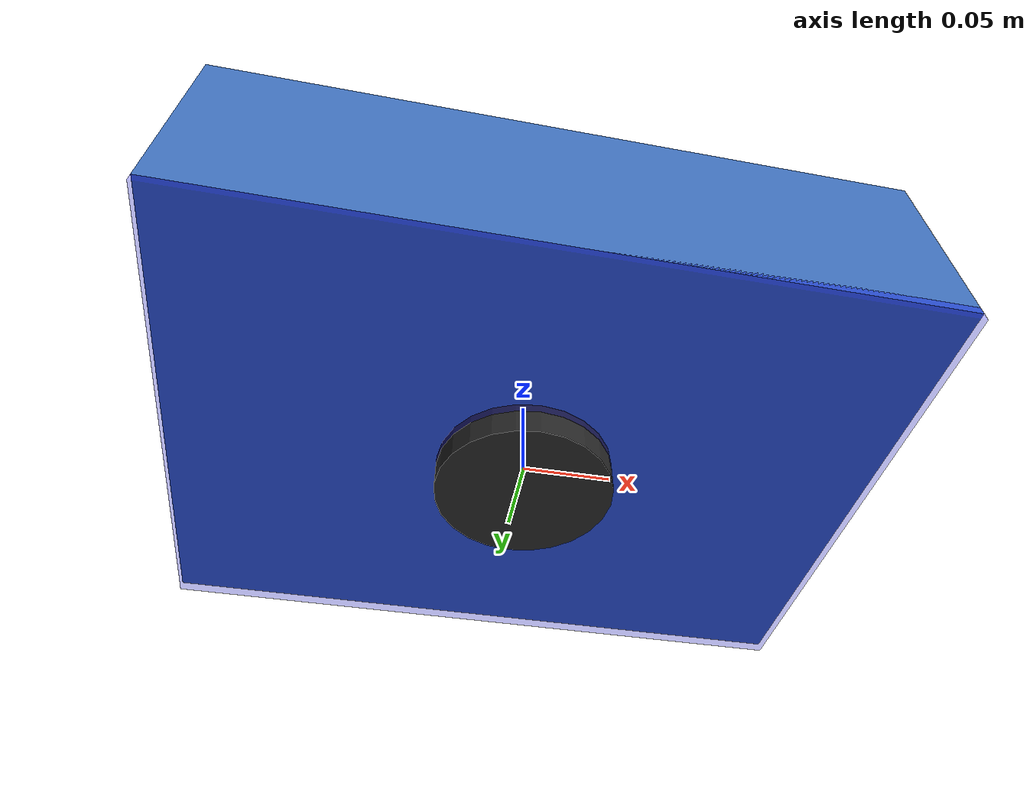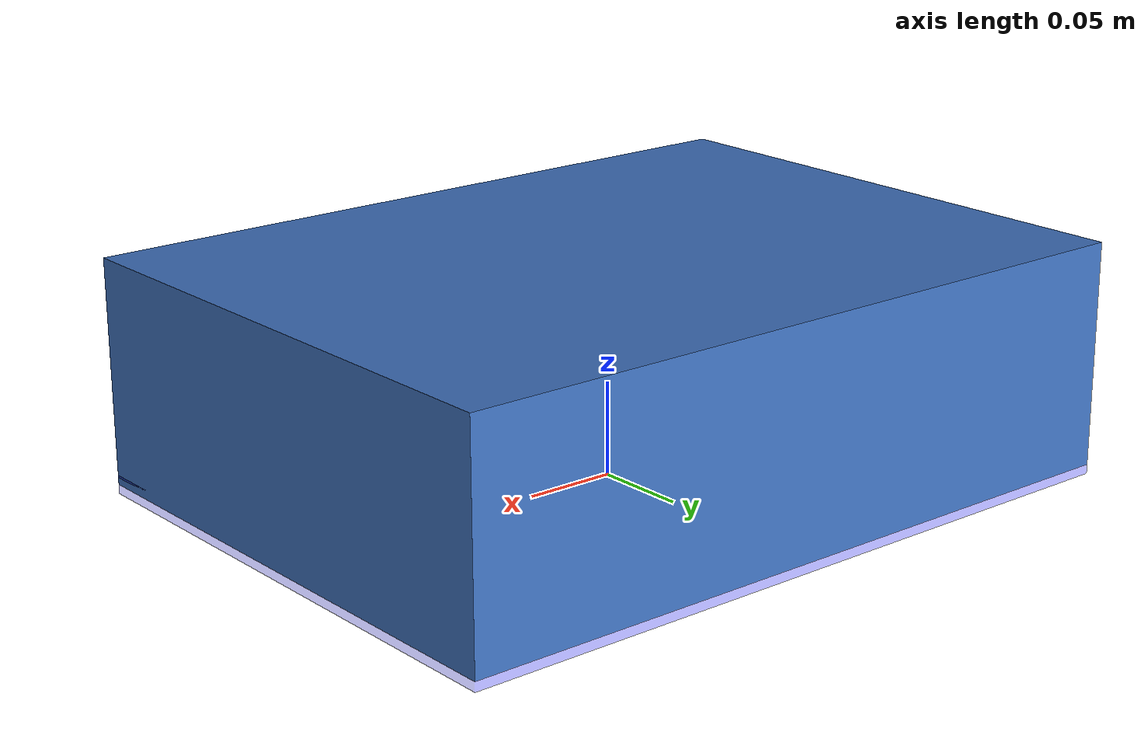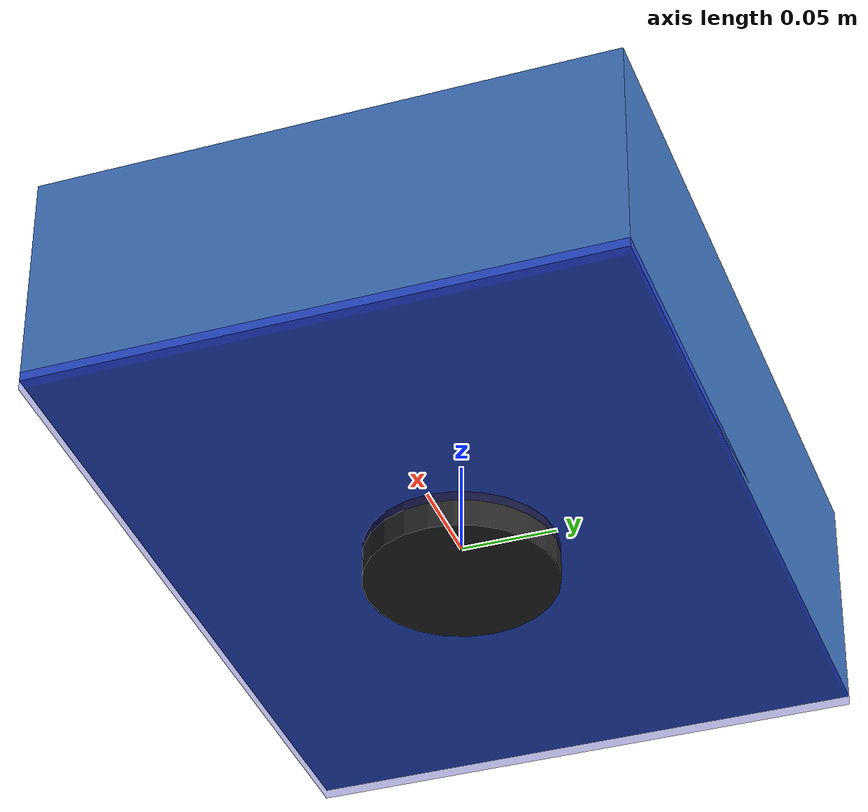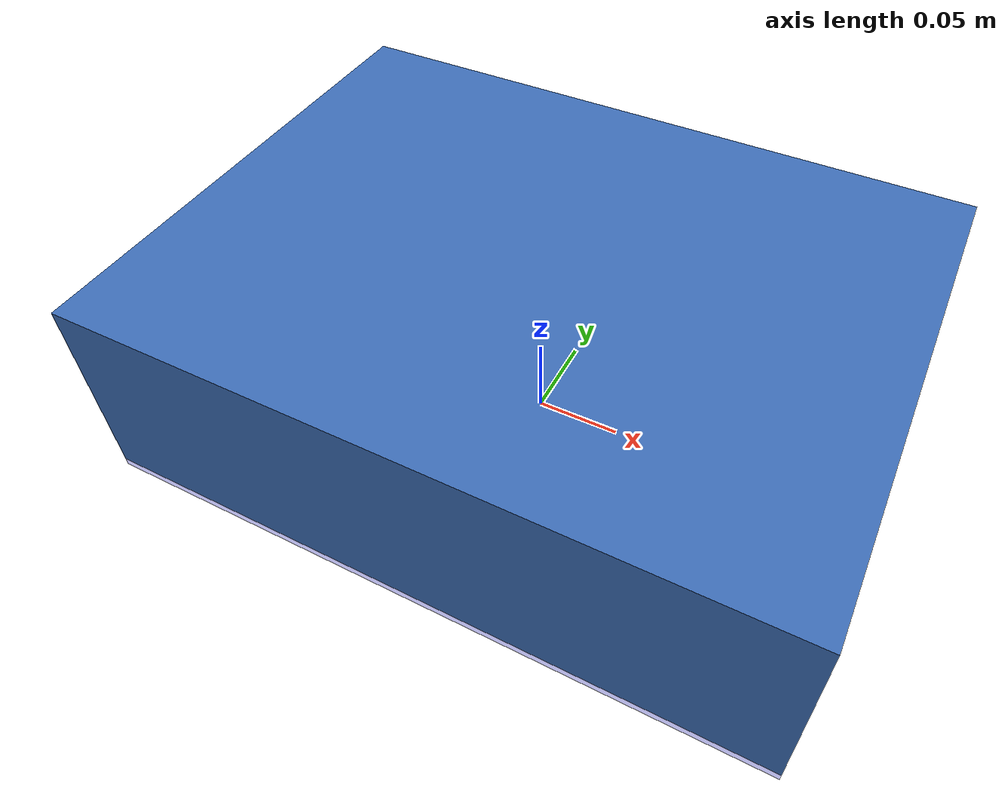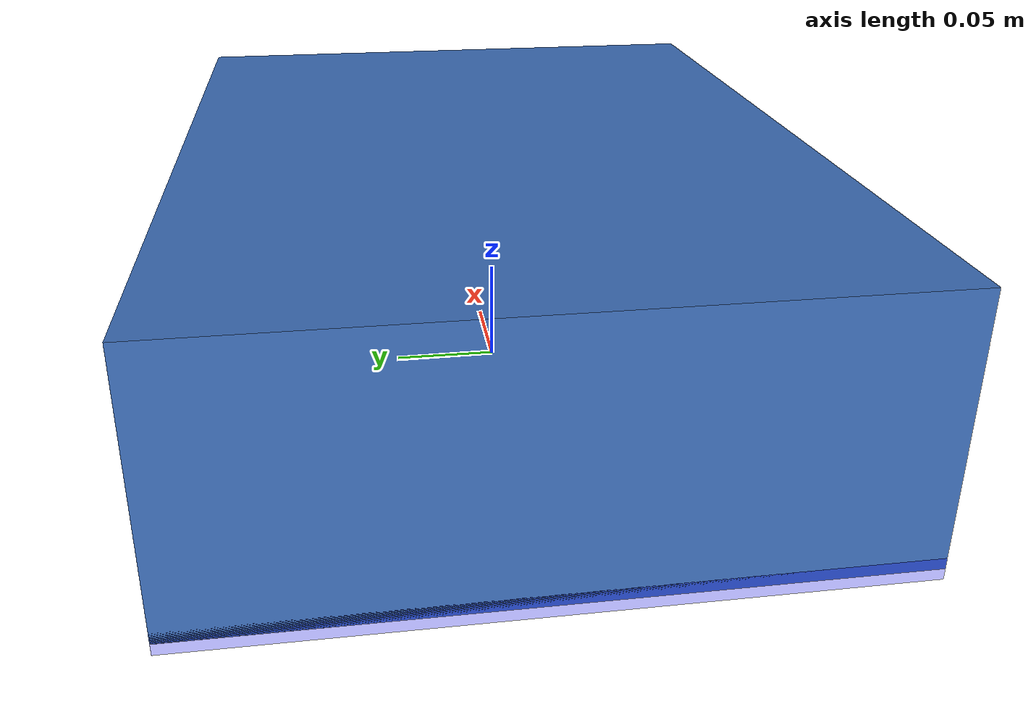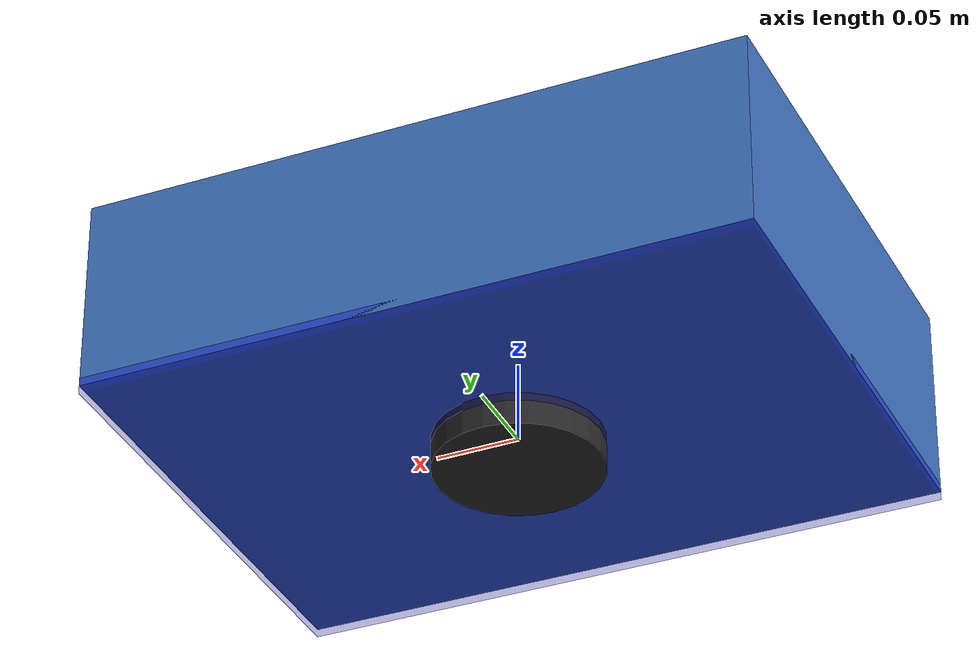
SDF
<?xml version="1.0"?>
<sdf version="1.8">
  <model name="meister_robot">
    <pose>0 0 0 0 0 0</pose>

    <!-- ── base_footprint ──────────────────────────────────────────── -->
    <link name="base_footprint">
      <pose>0 0 0 0 0 0</pose>
      <inertial>
        <pose>0 0 0 0 0 0</pose>
        <mass>0.01</mass>
        <inertia>
          <ixx>7.508e-05</ixx>
          <iyy>0.0001334</iyy>
          <izz>0.0002083</izz>
          <ixy>0</ixy>
          <ixz>0</ixz>
          <iyz>0</iyz>
        </inertia>
      </inertial>
      <collision name="collision">
        <geometry>
          <box>
            <size>0.4 0.3 0.01</size>
          </box>
        </geometry>
      </collision>
      <visual name="visual">
        <geometry>
          <box>
            <size>0.4 0.3 0.01</size>
          </box>
        </geometry>
        <material>
          <ambient>0.0 0.0 1.0 0.3</ambient>
          <diffuse>0.0 0.0 1.0 0.3</diffuse>
        </material>
      </visual>
    </link>

    <!-- ── base_link (empty structural link) ───────────────────────── -->
    <link name="base_link">
      <pose>0 0 0 0 0 0</pose>
      <inertial>
        <pose>0 0 0 0 0 0</pose>
        <mass>0.001</mass>
        <inertia>
          <ixx>1e-06</ixx>
          <iyy>1e-06</iyy>
          <izz>1e-06</izz>
          <ixy>0</ixy>
          <ixz>0</ixz>
          <iyz>0</iyz>
        </inertia>
      </inertial>
    </link>

    <!-- ── chassis (main body) ─────────────────────────────────────── -->
    <link name="chassis">
      <pose>0 0 0 0 0 0</pose>
      <inertial>
        <pose>0 0 0.06 0 0 0</pose>
        <mass>2.0</mass>
        <inertia>
          <ixx>0.0174</ixx>
          <iyy>0.02907</iyy>
          <izz>0.04167</izz>
          <ixy>0</ixy>
          <ixz>0</ixz>
          <iyz>0</iyz>
        </inertia>
      </inertial>
      <collision name="collision">
        <pose>0 0 0.06 0 0 0</pose>
        <geometry>
          <box>
            <size>0.4 0.3 0.12</size>
          </box>
        </geometry>
        <surface>
          <friction>
            <ode>
              <mu>0.8</mu>
              <mu2>0.8</mu2>
            </ode>
          </friction>
        </surface>
      </collision>
      <visual name="visual">
        <pose>0 0 0.06 0 0 0</pose>
        <geometry>
          <box>
            <size>0.4 0.3 0.12</size>
          </box>
        </geometry>
        <material>
          <ambient>0.25 0.45 0.75 1.0</ambient>
          <diffuse>0.25 0.45 0.75 1.0</diffuse>
        </material>
      </visual>
    </link>

    <!-- ── Front-Left Wheel ────────────────────────────────────────── -->
    <link name="lf_wheel">
      <pose>0 0 0 0 0 0</pose>
      <inertial>
        <pose>0 0 0 0 0 0</pose>
        <mass>0.15</mass>
        <inertia>
          <ixx>0.00011375</ixx>
          <iyy>0.00011375</iyy>
          <izz>0.0001875</izz>
          <ixy>0</ixy>
          <ixz>0</ixz>
          <iyz>0</iyz>
        </inertia>
      </inertial>
      <collision name="collision">
        <geometry>
          <cylinder>
            <radius>0.05</radius>
            <length>0.04</length>
          </cylinder>
        </geometry>
        <surface>
          <friction>
            <ode>
              <mu>0.4</mu>
              <mu2>0.4</mu2>
            </ode>
          </friction>
        </surface>
      </collision>
      <visual name="visual">
        <geometry>
          <cylinder>
            <radius>0.05</radius>
            <length>0.04</length>
          </cylinder>
        </geometry>
        <material>
          <ambient>0.15 0.15 0.15 1.0</ambient>
          <diffuse>0.15 0.15 0.15 1.0</diffuse>
        </material>
      </visual>
    </link>

    <!-- ── Front-Right Wheel ───────────────────────────────────────── -->
    <link name="rf_wheel">
      <pose>0 0 0 0 0 0</pose>
      <inertial>
        <pose>0 0 0 0 0 0</pose>
        <mass>0.15</mass>
        <inertia>
          <ixx>0.00011375</ixx>
          <iyy>0.00011375</iyy>
          <izz>0.0001875</izz>
          <ixy>0</ixy>
          <ixz>0</ixz>
          <iyz>0</iyz>
        </inertia>
      </inertial>
      <collision name="collision">
        <geometry>
          <cylinder>
            <radius>0.05</radius>
            <length>0.04</length>
          </cylinder>
        </geometry>
        <surface>
          <friction>
            <ode>
              <mu>0.4</mu>
              <mu2>0.4</mu2>
            </ode>
          </friction>
        </surface>
      </collision>
      <visual name="visual">
        <geometry>
          <cylinder>
            <radius>0.05</radius>
            <length>0.04</length>
          </cylinder>
        </geometry>
        <material>
          <ambient>0.15 0.15 0.15 1.0</ambient>
          <diffuse>0.15 0.15 0.15 1.0</diffuse>
        </material>
      </visual>
    </link>

    <!-- ── Rear-Left Wheel ─────────────────────────────────────────── -->
    <link name="lr_wheel">
      <pose>0 0 0 0 0 0</pose>
      <inertial>
        <pose>0 0 0 0 0 0</pose>
        <mass>0.15</mass>
        <inertia>
          <ixx>0.00011375</ixx>
          <iyy>0.00011375</iyy>
          <izz>0.0001875</izz>
          <ixy>0</ixy>
          <ixz>0</ixz>
          <iyz>0</iyz>
        </inertia>
      </inertial>
      <collision name="collision">
        <geometry>
          <cylinder>
            <radius>0.05</radius>
            <length>0.04</length>
          </cylinder>
        </geometry>
        <surface>
          <friction>
            <ode>
              <mu>0.4</mu>
              <mu2>0.4</mu2>
            </ode>
          </friction>
        </surface>
      </collision>
      <visual name="visual">
        <geometry>
          <cylinder>
            <radius>0.05</radius>
            <length>0.04</length>
          </cylinder>
        </geometry>
        <material>
          <ambient>0.15 0.15 0.15 1.0</ambient>
          <diffuse>0.15 0.15 0.15 1.0</diffuse>
        </material>
      </visual>
    </link>

    <!-- ── Rear-Right Wheel ────────────────────────────────────────── -->
    <link name="rr_wheel">
      <pose>0 0 0 0 0 0</pose>
      <inertial>
        <pose>0 0 0 0 0 0</pose>
        <mass>0.15</mass>
        <inertia>
          <ixx>0.00011375</ixx>
          <iyy>0.00011375</iyy>
          <izz>0.0001875</izz>
          <ixy>0</ixy>
          <ixz>0</ixz>
          <iyz>0</iyz>
        </inertia>
      </inertial>
      <collision name="collision">
        <geometry>
          <cylinder>
            <radius>0.05</radius>
            <length>0.04</length>
          </cylinder>
        </geometry>
        <surface>
          <friction>
            <ode>
              <mu>0.4</mu>
              <mu2>0.4</mu2>
            </ode>
          </friction>
        </surface>
      </collision>
      <visual name="visual">
        <geometry>
          <cylinder>
            <radius>0.05</radius>
            <length>0.04</length>
          </cylinder>
        </geometry>
        <material>
          <ambient>0.15 0.15 0.15 1.0</ambient>
          <diffuse>0.15 0.15 0.15 1.0</diffuse>
        </material>
      </visual>
    </link>

    <!-- ── Laser (2D LiDAR) ────────────────────────────────────────── -->
    <link name="laser_link">
      <pose>0 0 0 0 0 0</pose>
      <inertial>
        <pose>0 0 0 0 0 0</pose>
        <mass>0.05</mass>
        <inertia>
          <ixx>3.792e-05</ixx>
          <iyy>3.792e-05</iyy>
          <izz>6.25e-05</izz>
          <ixy>0</ixy>
          <ixz>0</ixz>
          <iyz>0</iyz>
        </inertia>
      </inertial>
      <collision name="collision">
        <geometry>
          <cylinder>
            <radius>0.05</radius>
            <length>0.04</length>
          </cylinder>
        </geometry>
      </collision>
      <visual name="visual">
        <geometry>
          <cylinder>
            <radius>0.05</radius>
            <length>0.04</length>
          </cylinder>
        </geometry>
        <material>
          <ambient>0.13 0.13 0.13 1.0</ambient>
          <diffuse>0.13 0.13 0.13 1.0</diffuse>
        </material>
      </visual>
      <!-- GPU LiDAR sensor -->
      <sensor name="laser_link_sensor" type="gpu_lidar">
        <pose>0 0 0 0 0 0</pose>
        <always_on>true</always_on>
        <visualize>true</visualize>
        <update_rate>10</update_rate>
        <topic>scan</topic>
        <gz_frame_id>laser_link</gz_frame_id>
        <lidar>
          <scan>
            <horizontal>
              <samples>360</samples>
              <min_angle>-3.14159</min_angle>
              <max_angle>3.14159</max_angle>
            </horizontal>
          </scan>
          <range>
            <min>0.3</min>
            <max>12.0</max>
          </range>
        </lidar>
      </sensor>
    </link>

    <!-- ══════════════════════════════════════════════════════════════
         JOINTS
         ══════════════════════════════════════════════════════════════ -->

    <!-- base_footprint sitting on ground, below base_link -->
    <joint name="base_footprint_joint" type="fixed">
      <parent>base_link</parent>
      <child>base_footprint</child>
      <pose>0 0 -0.05 0 0 0</pose>
    </joint>

    <!-- Chassis rigidly attached to base_link -->
    <joint name="chassis_joint" type="fixed">
      <parent>base_link</parent>
      <child>chassis</child>
      <pose>0 0 0 0 0 0</pose>
    </joint>

    <!-- Front-Left Wheel: continuous rotation around Z in joint frame
         (joint frame rotated -90° around X so Z→Y in robot frame) -->
    <joint name="lf_wheel_joint" type="revolute">
      <parent>base_link</parent>
      <child>lf_wheel</child>
      <pose>0.15 0.1 0 -1.5708 0 0</pose>
      <axis>
        <xyz>0 0 1</xyz>
      </axis>
    </joint>

    <!-- Front-Right Wheel -->
    <joint name="rf_wheel_joint" type="revolute">
      <parent>base_link</parent>
      <child>rf_wheel</child>
      <pose>0.15 -0.1 0 1.5708 0 0</pose>
      <axis>
        <xyz>0 0 -1</xyz>
      </axis>
    </joint>

    <!-- Rear-Left Wheel -->
    <joint name="lr_wheel_joint" type="revolute">
      <parent>base_link</parent>
      <child>lr_wheel</child>
      <pose>-0.15 0.1 0 -1.5708 0 0</pose>
      <axis>
        <xyz>0 0 1</xyz>
      </axis>
    </joint>

    <!-- Rear-Right Wheel -->
    <joint name="rr_wheel_joint" type="revolute">
      <parent>base_link</parent>
      <child>rr_wheel</child>
      <pose>-0.15 -0.1 0 1.5708 0 0</pose>
      <axis>
        <xyz>0 0 -1</xyz>
      </axis>
    </joint>

    <!-- Laser fixed on top of base_link -->
    <joint name="laser_link_joint" type="fixed">
      <parent>base_link</parent>
      <child>laser_link</child>
      <pose>0 0 0.2 0 0 0</pose>
    </joint>

    <!-- ══════════════════════════════════════════════════════════════
         GAZEBO PLUGINS
         ══════════════════════════════════════════════════════════════ -->

    <!-- Joint state publisher (publishes joint_states topic) -->
    <plugin filename="gz-sim-joint-state-publisher-system"
            name="gz::sim::systems::JointStatePublisher">
      <topic>joint_states</topic>
      <joint_name>lf_wheel_joint</joint_name>
      <joint_name>rf_wheel_joint</joint_name>
      <joint_name>lr_wheel_joint</joint_name>
      <joint_name>rr_wheel_joint</joint_name>
    </plugin>

    <!-- MecanumDrive plugin (reads /cmd_vel directly) -->
    <plugin filename="libgz-sim-mecanum-drive-system"
            name="gz::sim::systems::MecanumDrive">
      <front_left_joint>lf_wheel_joint</front_left_joint>
      <front_right_joint>rf_wheel_joint</front_right_joint>
      <back_left_joint>lr_wheel_joint</back_left_joint>
      <back_right_joint>rr_wheel_joint</back_right_joint>
      <wheel_separation>0.2</wheel_separation>
      <wheelbase>0.3</wheelbase>
      <wheel_radius>0.05</wheel_radius>
      <odom_publish_frequency>50</odom_publish_frequency>
      <topic>cmd_vel</topic>
      <min_acceleration>-3.0</min_acceleration>
      <max_acceleration>3.0</max_acceleration>
      <odom_topic>odom</odom_topic>
      <frame_id>odom</frame_id>
      <child_frame_id>base_link</child_frame_id>
      <tf_topic>/tf</tf_topic>
    </plugin>

  </model>
</sdf>
